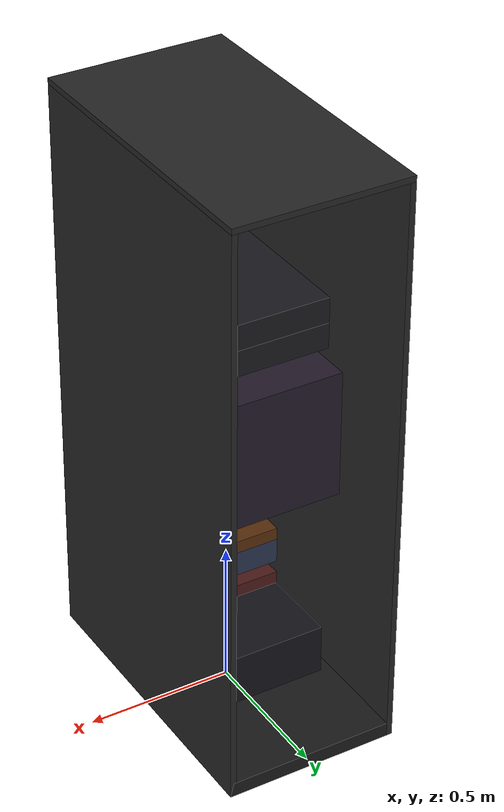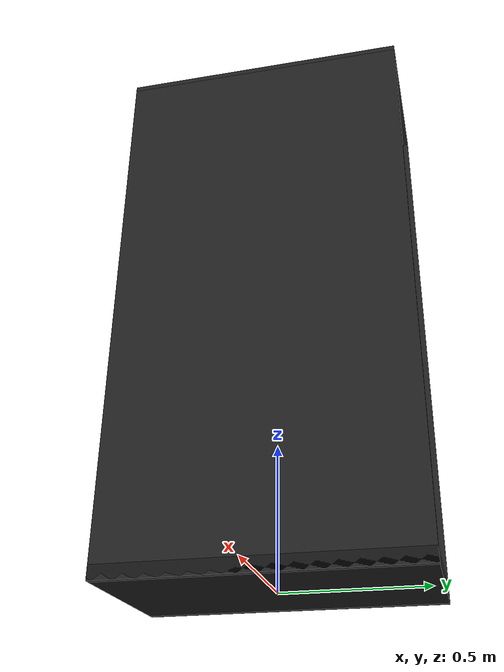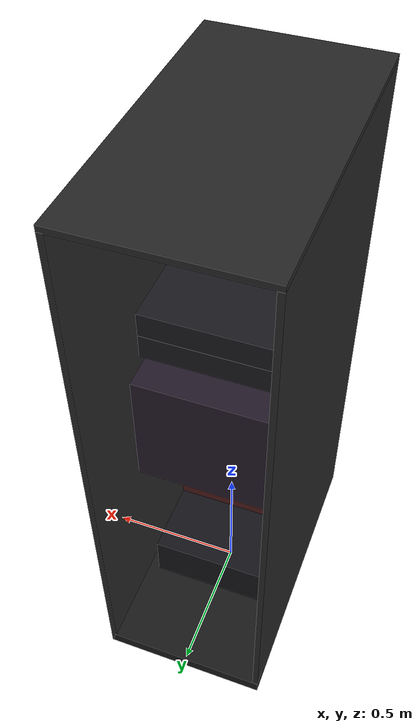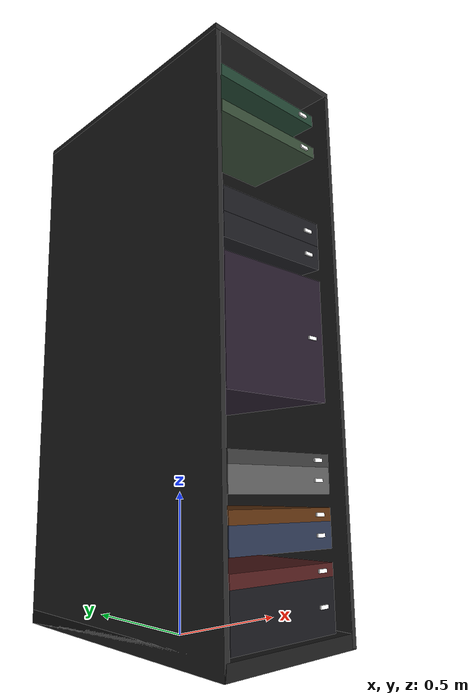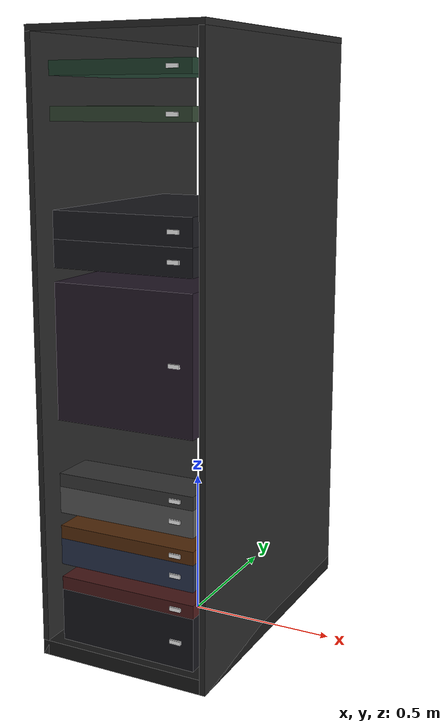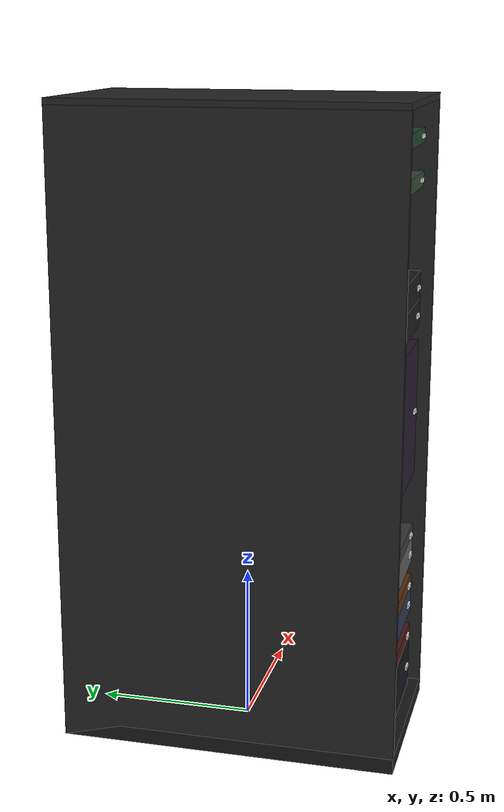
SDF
<?xml version="1.0"?>
<sdf version="1.9">
  <model name="server_rack_4">
    <static>true</static>

    <!-- ===================== FRAME ===================== -->

    <link name="frame_side_left">
      <pose>-0.29 0 1.0 0 0 0</pose>
      <collision name="collision">
        <geometry><box><size>0.02 1.07 2.0</size></box></geometry>
      </collision>
      <visual name="visual">
        <geometry><box><size>0.02 1.07 2.0</size></box></geometry>
        <material>
          <ambient>0.15 0.15 0.15 1</ambient>
          <diffuse>0.15 0.15 0.15 1</diffuse>
        </material>
      </visual>
    </link>

    <link name="frame_side_right">
      <pose>0.29 0 1.0 0 0 0</pose>
      <collision name="collision">
        <geometry><box><size>0.02 1.07 2.0</size></box></geometry>
      </collision>
      <visual name="visual">
        <geometry><box><size>0.02 1.07 2.0</size></box></geometry>
        <material>
          <ambient>0.15 0.15 0.15 1</ambient>
          <diffuse>0.15 0.15 0.15 1</diffuse>
        </material>
      </visual>
    </link>

    <link name="frame_top">
      <pose>0 0 2.01 0 0 0</pose>
      <collision name="collision">
        <geometry><box><size>0.60 1.07 0.02</size></box></geometry>
      </collision>
      <visual name="visual">
        <geometry><box><size>0.60 1.07 0.02</size></box></geometry>
        <material>
          <ambient>0.15 0.15 0.15 1</ambient>
          <diffuse>0.15 0.15 0.15 1</diffuse>
        </material>
      </visual>
    </link>

    <link name="frame_plinth">
      <pose>0 0 0.025 0 0 0</pose>
      <collision name="collision">
        <geometry><box><size>0.60 1.07 0.05</size></box></geometry>
      </collision>
      <visual name="visual">
        <geometry><box><size>0.60 1.07 0.05</size></box></geometry>
        <material>
          <ambient>0.10 0.10 0.10 1</ambient>
          <diffuse>0.10 0.10 0.10 1</diffuse>
        </material>
      </visual>
    </link>

    <!-- ===================== EQUIPMENT ===================== -->

    <!-- 4RU UPS, U1-U4 -->
    <link name="ups">
      <pose>0 -0.15 0.1389 0 0 0</pose>
      <collision name="collision">
        <geometry><box><size>0.483 0.70 0.1778</size></box></geometry>
      </collision>
      <visual name="visual">
        <geometry><box><size>0.483 0.70 0.1778</size></box></geometry>
        <material>
          <ambient>0.08 0.08 0.10 1</ambient>
          <diffuse>0.08 0.08 0.10 1</diffuse>
        </material>
      </visual>
    </link>

    <!-- 1RU PDU, U5 -->
    <link name="pdu">
      <pose>0 -0.29 0.2500 0 0 0</pose>
      <collision name="collision">
        <geometry><box><size>0.483 0.42 0.0444</size></box></geometry>
      </collision>
      <visual name="visual">
        <geometry><box><size>0.483 0.42 0.0444</size></box></geometry>
        <material>
          <ambient>0.30 0.10 0.10 1</ambient>
          <diffuse>0.30 0.10 0.10 1</diffuse>
        </material>
      </visual>
    </link>

    <!-- U6 intentionally EMPTY -->

    <!-- 2RU network switch 1, U7-U8 -->
    <link name="switch_1">
      <pose>0 -0.29 0.3612 0 0 0</pose>
      <collision name="collision">
        <geometry><box><size>0.483 0.42 0.0889</size></box></geometry>
      </collision>
      <visual name="visual">
        <geometry><box><size>0.483 0.42 0.0889</size></box></geometry>
        <material>
          <ambient>0.16 0.20 0.30 1</ambient>
          <diffuse>0.16 0.20 0.30 1</diffuse>
        </material>
      </visual>
    </link>

    <!-- 1RU firewall, U9 -->
    <link name="firewall">
      <pose>0 -0.29 0.4278 0 0 0</pose>
      <collision name="collision">
        <geometry><box><size>0.483 0.42 0.0444</size></box></geometry>
      </collision>
      <visual name="visual">
        <geometry><box><size>0.483 0.42 0.0444</size></box></geometry>
        <material>
          <ambient>0.35 0.18 0.05 1</ambient>
          <diffuse>0.35 0.18 0.05 1</diffuse>
        </material>
      </visual>
    </link>

    <!-- U10 intentionally EMPTY -->

    <!-- 2RU patch panel 1, U11-U12 -->
    <link name="patch_panel_1">
      <pose>0 -0.425 0.5390 0 0 0</pose>
      <collision name="collision">
        <geometry><box><size>0.483 0.15 0.0889</size></box></geometry>
      </collision>
      <visual name="visual">
        <geometry><box><size>0.483 0.15 0.0889</size></box></geometry>
        <material>
          <ambient>0.35 0.35 0.35 1</ambient>
          <diffuse>0.35 0.35 0.35 1</diffuse>
        </material>
      </visual>
    </link>

    <!-- 1RU cable manager 1, U13 -->
    <link name="cable_manager_1">
      <pose>0 -0.425 0.6056 0 0 0</pose>
      <collision name="collision">
        <geometry><box><size>0.483 0.15 0.0444</size></box></geometry>
      </collision>
      <visual name="visual">
        <geometry><box><size>0.483 0.15 0.0444</size></box></geometry>
        <material>
          <ambient>0.22 0.22 0.22 1</ambient>
          <diffuse>0.22 0.22 0.22 1</diffuse>
        </material>
      </visual>
    </link>

    <!-- U14-U17 intentionally EMPTY -->

    <!-- 10RU blade chassis, U18-U27 -->
    <link name="blade_chassis">
      <pose>0 -0.11 1.0279 0 0 0</pose>
      <collision name="collision">
        <geometry><box><size>0.483 0.78 0.4445</size></box></geometry>
      </collision>
      <visual name="visual">
        <geometry><box><size>0.483 0.78 0.4445</size></box></geometry>
        <material>
          <ambient>0.14 0.10 0.16 1</ambient>
          <diffuse>0.14 0.10 0.16 1</diffuse>
        </material>
      </visual>
    </link>

    <!-- U28 intentionally EMPTY -->

    <!-- 2RU server 1, U29-U30 -->
    <link name="server_1">
      <pose>0 -0.15 1.3391 0 0 0</pose>
      <collision name="collision">
        <geometry><box><size>0.483 0.70 0.0889</size></box></geometry>
      </collision>
      <visual name="visual">
        <geometry><box><size>0.483 0.70 0.0889</size></box></geometry>
        <material>
          <ambient>0.10 0.10 0.12 1</ambient>
          <diffuse>0.10 0.10 0.12 1</diffuse>
        </material>
      </visual>
    </link>

    <!-- 2RU server 2, U31-U32 -->
    <link name="server_2">
      <pose>0 -0.15 1.4280 0 0 0</pose>
      <collision name="collision">
        <geometry><box><size>0.483 0.70 0.0889</size></box></geometry>
      </collision>
      <visual name="visual">
        <geometry><box><size>0.483 0.70 0.0889</size></box></geometry>
        <material>
          <ambient>0.10 0.10 0.12 1</ambient>
          <diffuse>0.10 0.10 0.12 1</diffuse>
        </material>
      </visual>
    </link>

    <!-- U33-U38 intentionally EMPTY -->

    <!-- 1RU console server, U39 -->
    <link name="console_server">
      <pose>0 -0.35 1.7613 0 0 0</pose>
      <collision name="collision">
        <geometry><box><size>0.483 0.30 0.0444</size></box></geometry>
      </collision>
      <visual name="visual">
        <geometry><box><size>0.483 0.30 0.0444</size></box></geometry>
        <material>
          <ambient>0.20 0.28 0.20 1</ambient>
          <diffuse>0.20 0.28 0.20 1</diffuse>
        </material>
      </visual>
    </link>

    <!-- U40-U41 intentionally EMPTY -->

    <!-- 1RU KVM console, U42 -->
    <link name="kvm">
      <pose>0 -0.29 1.8947 0 0 0</pose>
      <collision name="collision">
        <geometry><box><size>0.483 0.42 0.0444</size></box></geometry>
      </collision>
      <visual name="visual">
        <geometry><box><size>0.483 0.42 0.0444</size></box></geometry>
        <material>
          <ambient>0.12 0.25 0.18 1</ambient>
          <diffuse>0.12 0.25 0.18 1</diffuse>
        </material>
      </visual>
    </link>

    <!-- ===================== RFID TAGS ===================== -->

    <!-- ups, U1-4 -->
    <model name="barcode_label_031FB3A">
      <static>true</static>
      <pose>0.18 -0.5042 0.1389 0 0 0</pose>
      <link name="label_link">
        <visual name="substrate">
          <geometry><box><size>0.03810 0.00635 0.01270</size></box></geometry>
          <material>
            <ambient>0.9 0.9 0.9 1</ambient>
            <diffuse>0.9 0.9 0.9 1</diffuse>
          </material>
        </visual>
        <visual name="print">
          <pose>0 -0.00327 0 1.5708 0 0</pose>
          <geometry><box><size>0.03810 0.01270 0.0002</size></box></geometry>
          <material>
            <ambient>1 1 1 1</ambient>
            <diffuse>1 1 1 1</diffuse>
            <pbr><metal>
              <albedo_map>model://barcode_labels/materials/textures/031FB3A.png</albedo_map>
              <metalness>0.0</metalness>
              <roughness>1.0</roughness>
            </metal></pbr>
          </material>
        </visual>
      </link>
    </model>

    <!-- pdu, U5-5 -->
    <model name="barcode_label_031FB3B">
      <static>true</static>
      <pose>0.18 -0.5042 0.2500 0 0 0</pose>
      <link name="label_link">
        <visual name="substrate">
          <geometry><box><size>0.03810 0.00635 0.01270</size></box></geometry>
          <material>
            <ambient>0.9 0.9 0.9 1</ambient>
            <diffuse>0.9 0.9 0.9 1</diffuse>
          </material>
        </visual>
        <visual name="print">
          <pose>0 -0.00327 0 1.5708 0 0</pose>
          <geometry><box><size>0.03810 0.01270 0.0002</size></box></geometry>
          <material>
            <ambient>1 1 1 1</ambient>
            <diffuse>1 1 1 1</diffuse>
            <pbr><metal>
              <albedo_map>model://barcode_labels/materials/textures/031FB3B.png</albedo_map>
              <metalness>0.0</metalness>
              <roughness>1.0</roughness>
            </metal></pbr>
          </material>
        </visual>
      </link>
    </model>

    <!-- switch, U7-8 -->
    <model name="barcode_label_031FB3C">
      <static>true</static>
      <pose>0.18 -0.5042 0.3612 0 0 0</pose>
      <link name="label_link">
        <visual name="substrate">
          <geometry><box><size>0.03810 0.00635 0.01270</size></box></geometry>
          <material>
            <ambient>0.9 0.9 0.9 1</ambient>
            <diffuse>0.9 0.9 0.9 1</diffuse>
          </material>
        </visual>
        <visual name="print">
          <pose>0 -0.00327 0 1.5708 0 0</pose>
          <geometry><box><size>0.03810 0.01270 0.0002</size></box></geometry>
          <material>
            <ambient>1 1 1 1</ambient>
            <diffuse>1 1 1 1</diffuse>
            <pbr><metal>
              <albedo_map>model://barcode_labels/materials/textures/031FB3C.png</albedo_map>
              <metalness>0.0</metalness>
              <roughness>1.0</roughness>
            </metal></pbr>
          </material>
        </visual>
      </link>
    </model>

    <!-- firewall, U9-9 -->
    <model name="barcode_label_031FB3D">
      <static>true</static>
      <pose>0.18 -0.5042 0.4278 0 0 0</pose>
      <link name="label_link">
        <visual name="substrate">
          <geometry><box><size>0.03810 0.00635 0.01270</size></box></geometry>
          <material>
            <ambient>0.9 0.9 0.9 1</ambient>
            <diffuse>0.9 0.9 0.9 1</diffuse>
          </material>
        </visual>
        <visual name="print">
          <pose>0 -0.00327 0 1.5708 0 0</pose>
          <geometry><box><size>0.03810 0.01270 0.0002</size></box></geometry>
          <material>
            <ambient>1 1 1 1</ambient>
            <diffuse>1 1 1 1</diffuse>
            <pbr><metal>
              <albedo_map>model://barcode_labels/materials/textures/031FB3D.png</albedo_map>
              <metalness>0.0</metalness>
              <roughness>1.0</roughness>
            </metal></pbr>
          </material>
        </visual>
      </link>
    </model>

    <!-- patch_panel, U11-12 -->
    <model name="barcode_label_031FB3E">
      <static>true</static>
      <pose>0.18 -0.5042 0.5390 0 0 0</pose>
      <link name="label_link">
        <visual name="substrate">
          <geometry><box><size>0.03810 0.00635 0.01270</size></box></geometry>
          <material>
            <ambient>0.9 0.9 0.9 1</ambient>
            <diffuse>0.9 0.9 0.9 1</diffuse>
          </material>
        </visual>
        <visual name="print">
          <pose>0 -0.00327 0 1.5708 0 0</pose>
          <geometry><box><size>0.03810 0.01270 0.0002</size></box></geometry>
          <material>
            <ambient>1 1 1 1</ambient>
            <diffuse>1 1 1 1</diffuse>
            <pbr><metal>
              <albedo_map>model://barcode_labels/materials/textures/031FB3E.png</albedo_map>
              <metalness>0.0</metalness>
              <roughness>1.0</roughness>
            </metal></pbr>
          </material>
        </visual>
      </link>
    </model>

    <!-- cable_manager, U13-13 -->
    <model name="barcode_label_031FB3F">
      <static>true</static>
      <pose>0.18 -0.5042 0.6056 0 0 0</pose>
      <link name="label_link">
        <visual name="substrate">
          <geometry><box><size>0.03810 0.00635 0.01270</size></box></geometry>
          <material>
            <ambient>0.9 0.9 0.9 1</ambient>
            <diffuse>0.9 0.9 0.9 1</diffuse>
          </material>
        </visual>
        <visual name="print">
          <pose>0 -0.00327 0 1.5708 0 0</pose>
          <geometry><box><size>0.03810 0.01270 0.0002</size></box></geometry>
          <material>
            <ambient>1 1 1 1</ambient>
            <diffuse>1 1 1 1</diffuse>
            <pbr><metal>
              <albedo_map>model://barcode_labels/materials/textures/031FB3F.png</albedo_map>
              <metalness>0.0</metalness>
              <roughness>1.0</roughness>
            </metal></pbr>
          </material>
        </visual>
      </link>
    </model>

    <!-- blade_chassis, U18-27 -->
    <model name="barcode_label_031FB40">
      <static>true</static>
      <pose>0.18 -0.5042 1.0279 0 0 0</pose>
      <link name="label_link">
        <visual name="substrate">
          <geometry><box><size>0.03810 0.00635 0.01270</size></box></geometry>
          <material>
            <ambient>0.9 0.9 0.9 1</ambient>
            <diffuse>0.9 0.9 0.9 1</diffuse>
          </material>
        </visual>
        <visual name="print">
          <pose>0 -0.00327 0 1.5708 0 0</pose>
          <geometry><box><size>0.03810 0.01270 0.0002</size></box></geometry>
          <material>
            <ambient>1 1 1 1</ambient>
            <diffuse>1 1 1 1</diffuse>
            <pbr><metal>
              <albedo_map>model://barcode_labels/materials/textures/031FB40.png</albedo_map>
              <metalness>0.0</metalness>
              <roughness>1.0</roughness>
            </metal></pbr>
          </material>
        </visual>
      </link>
    </model>

    <!-- server, U29-30 -->
    <model name="barcode_label_031FB41">
      <static>true</static>
      <pose>0.18 -0.5042 1.3391 0 0 0</pose>
      <link name="label_link">
        <visual name="substrate">
          <geometry><box><size>0.03810 0.00635 0.01270</size></box></geometry>
          <material>
            <ambient>0.9 0.9 0.9 1</ambient>
            <diffuse>0.9 0.9 0.9 1</diffuse>
          </material>
        </visual>
        <visual name="print">
          <pose>0 -0.00327 0 1.5708 0 0</pose>
          <geometry><box><size>0.03810 0.01270 0.0002</size></box></geometry>
          <material>
            <ambient>1 1 1 1</ambient>
            <diffuse>1 1 1 1</diffuse>
            <pbr><metal>
              <albedo_map>model://barcode_labels/materials/textures/031FB41.png</albedo_map>
              <metalness>0.0</metalness>
              <roughness>1.0</roughness>
            </metal></pbr>
          </material>
        </visual>
      </link>
    </model>

    <!-- server, U31-32 -->
    <model name="barcode_label_031FB42">
      <static>true</static>
      <pose>0.18 -0.5042 1.4280 0 0 0</pose>
      <link name="label_link">
        <visual name="substrate">
          <geometry><box><size>0.03810 0.00635 0.01270</size></box></geometry>
          <material>
            <ambient>0.9 0.9 0.9 1</ambient>
            <diffuse>0.9 0.9 0.9 1</diffuse>
          </material>
        </visual>
        <visual name="print">
          <pose>0 -0.00327 0 1.5708 0 0</pose>
          <geometry><box><size>0.03810 0.01270 0.0002</size></box></geometry>
          <material>
            <ambient>1 1 1 1</ambient>
            <diffuse>1 1 1 1</diffuse>
            <pbr><metal>
              <albedo_map>model://barcode_labels/materials/textures/031FB42.png</albedo_map>
              <metalness>0.0</metalness>
              <roughness>1.0</roughness>
            </metal></pbr>
          </material>
        </visual>
      </link>
    </model>

    <!-- console_server, U39-39 -->
    <model name="barcode_label_031FB43">
      <static>true</static>
      <pose>0.18 -0.5042 1.7613 0 0 0</pose>
      <link name="label_link">
        <visual name="substrate">
          <geometry><box><size>0.03810 0.00635 0.01270</size></box></geometry>
          <material>
            <ambient>0.9 0.9 0.9 1</ambient>
            <diffuse>0.9 0.9 0.9 1</diffuse>
          </material>
        </visual>
        <visual name="print">
          <pose>0 -0.00327 0 1.5708 0 0</pose>
          <geometry><box><size>0.03810 0.01270 0.0002</size></box></geometry>
          <material>
            <ambient>1 1 1 1</ambient>
            <diffuse>1 1 1 1</diffuse>
            <pbr><metal>
              <albedo_map>model://barcode_labels/materials/textures/031FB43.png</albedo_map>
              <metalness>0.0</metalness>
              <roughness>1.0</roughness>
            </metal></pbr>
          </material>
        </visual>
      </link>
    </model>

    <!-- kvm, U42-42 -->
    <model name="barcode_label_031FB44">
      <static>true</static>
      <pose>0.18 -0.5042 1.8947 0 0 0</pose>
      <link name="label_link">
        <visual name="substrate">
          <geometry><box><size>0.03810 0.00635 0.01270</size></box></geometry>
          <material>
            <ambient>0.9 0.9 0.9 1</ambient>
            <diffuse>0.9 0.9 0.9 1</diffuse>
          </material>
        </visual>
        <visual name="print">
          <pose>0 -0.00327 0 1.5708 0 0</pose>
          <geometry><box><size>0.03810 0.01270 0.0002</size></box></geometry>
          <material>
            <ambient>1 1 1 1</ambient>
            <diffuse>1 1 1 1</diffuse>
            <pbr><metal>
              <albedo_map>model://barcode_labels/materials/textures/031FB44.png</albedo_map>
              <metalness>0.0</metalness>
              <roughness>1.0</roughness>
            </metal></pbr>
          </material>
        </visual>
      </link>
    </model>

  </model>
</sdf>
